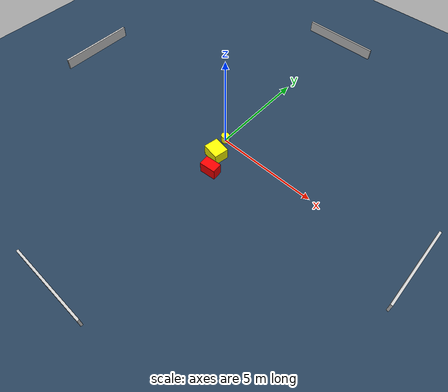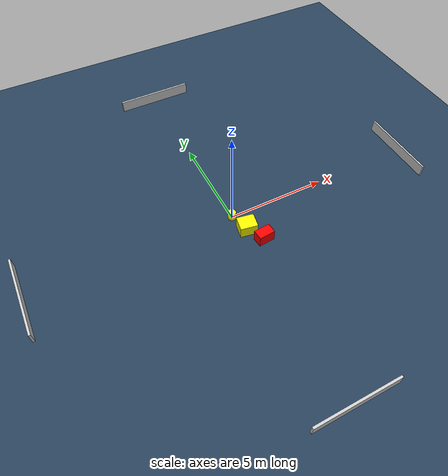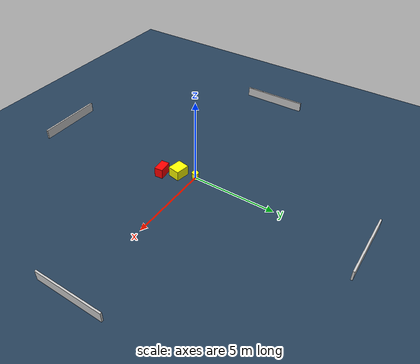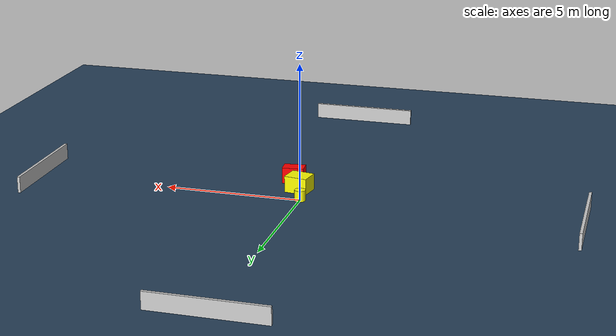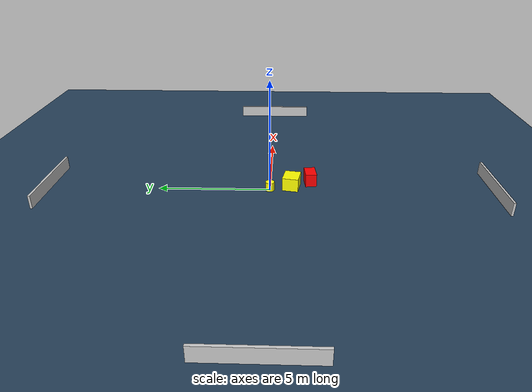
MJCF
<?xml version="1.0" ?>
<mujoco model="generated_environment">
  <option timestep="0.01" integrator="RK4" cone="elliptic"/>
  <default>
    <geom density="1"/>
  </default>
  <asset>
    <texture builtin="gradient" height="3072" name="skybox" rgb1="0.3 0.5 0.7" rgb2="0 0 0" type="skybox" width="512"/>
    <texture builtin="checker" height="300" name="groundplane" rgb1="0.2 0.3 0.4" rgb2="0.1 0.2 0.3" type="2d" width="300"/>
    <material name="groundplane" reflectance="0.2" texrepeat="5 5" texture="groundplane"/>
  </asset>
  <worldbody>
    <light dir="0 0 -1" directional="true" pos="0 0 1.5"/>
    <geom condim="3" friction="0.5 0.005 0.001" material="groundplane" name="floor" pos="0 0 0" size="0 0 0.05" type="plane"/>
    <body name="walls">
      <geom name="wall_1" condim="4" pos="-10.0 0.0 0.3" rgba="0.800000011920929 0.800000011920929 0.800000011920929 1.0" size="0.05 2.0 0.3" type="box"/>
      <geom name="wall_2" condim="4" pos="10.0 0.0 0.3" rgba="0.800000011920929 0.800000011920929 0.800000011920929 1.0" size="0.05 2.0 0.3" type="box"/>
      <geom name="wall_3" condim="4" pos="0.0 -10.0 0.3" rgba="0.800000011920929 0.800000011920929 0.800000011920929 1.0" size="2.0 0.05 0.3" type="box"/>
      <geom name="wall_4" condim="4" pos="0.0 10.0 0.3" rgba="0.800000011920929 0.800000011920929 0.800000011920929 1.0" size="2.0 0.05 0.3" type="box"/>
    </body>
    <body name="robot">
      <joint name="joint_x" type="slide" pos="0 0 0" axis="1 0 0"/>
      <joint name="joint_y" type="slide" pos="0 0 0" axis="0 1 0"/>
      <geom name="robot" type="cylinder" pos="0.0 0.0 0.2" size="0.2 0.2 0.0" mass="5.0" friction="1.0 0.005 0.0001" condim="4" rgba="1.0 1.0 0.0 1.0"/>
    </body>
    <body name="obstacle_1_movable">
      <geom name="obstacle_1_movable" condim="4" pos="0.29663840453395174 -0.9690434577692931 0.3" euler="0 0 259.7735029353162" friction="0.0 0.005 0.001" rgba="1.0 1.0 0.0 1.0" size="0.36155337253679076 0.42415726855853564 0.3" type="box" mass="0.1"/>
      <joint type="free"/>
    </body>
    <body name="obstacle_2_static">
      <geom name="obstacle_2_static" condim="4" pos="0.7427002688446024 -1.8258062163299769 0.3" euler="0 0 4.888734725660959" friction="0.0 0.005 0.001" rgba="1.0 0.0 0.0 1.0" size="0.39935480973674664 0.2514872387875659 0.3" type="box"/>
    </body>
  </worldbody>
  <actuator>
    <motor name="actuator_x" joint="joint_x" gear="1" ctrlrange="-1 1"/>
    <motor name="actuator_y" joint="joint_y" gear="1" ctrlrange="-1 1"/>
  </actuator>
</mujoco>
